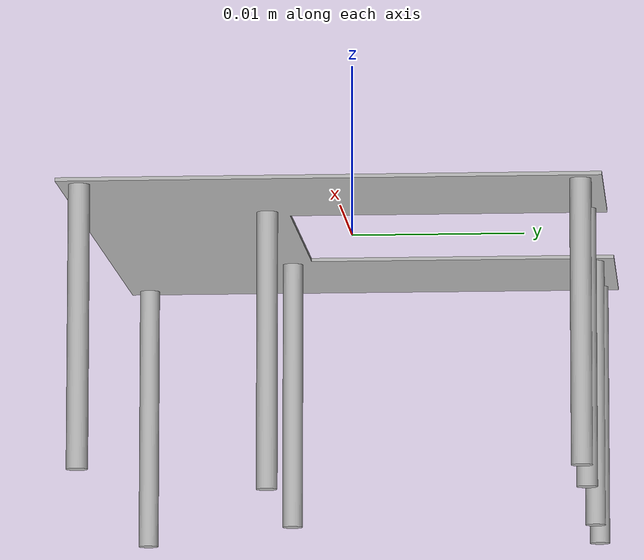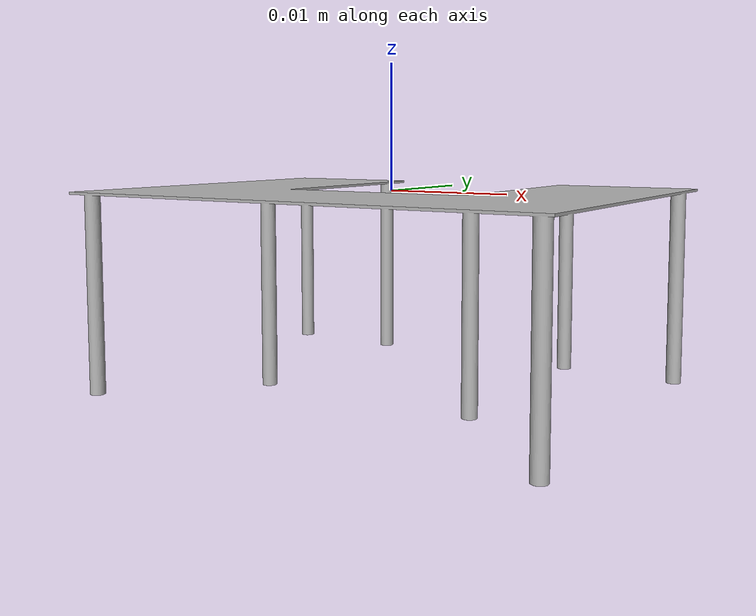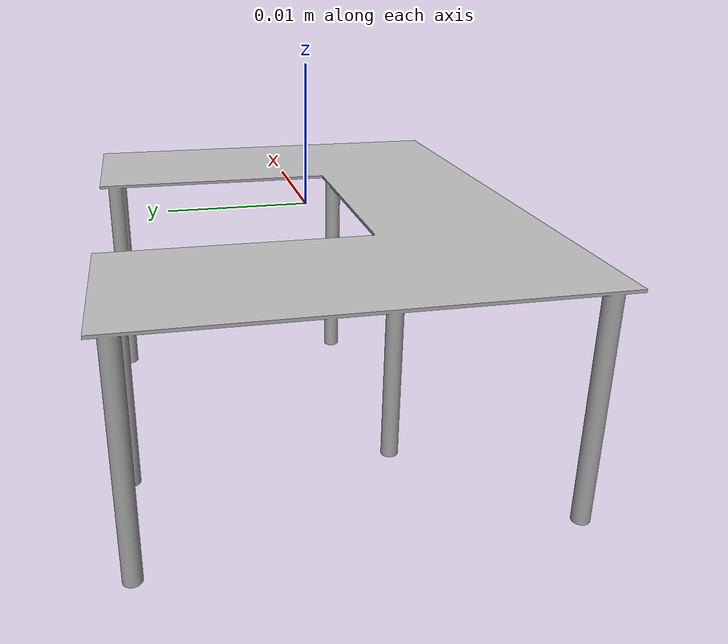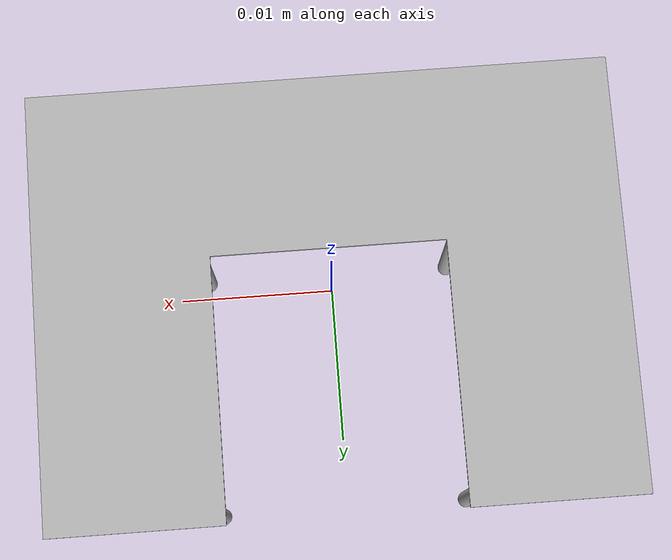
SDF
<?xml version="1.0" ?>
<sdf version='1.6'>
	<model name='table'>
	<scale>0.02 0.02 0.02</scale>
	<static>1</static>
	      <link name='link'>
	        <inertial>
	          <mass>2</mass>
	          <inertia>
	            <ixx>0.00055575</ixx>
	            <ixy>0</ixy>
	            <ixz>0</ixz>
	            <iyy>0.00055575</iyy>
	            <iyz>0</iyz>
	            <izz>0.0001755</izz>
	          </inertia>
	        </inertial>
	        <collision name='collision'>
	          <geometry>
	            <mesh>
	              <uri>model://table/meshes/table.stl</uri>
			<scale>0.02 0.02 0.02</scale>
	            </mesh>
	          </geometry>
	          <surface>
	            <friction>
	              <ode>
	                <mu>10</mu>
	                <mu2>10</mu2>
	              </ode>
	              <torsional>
	                <ode/>
	              </torsional>
	            </friction>
	            <contact>
	              <ode>
	                <kp>1e+07</kp>
	                <kd>1</kd>
	                <min_depth>0.001</min_depth>
	                <max_vel>0.5</max_vel>
	              </ode>
	            </contact>
	            <bounce/>
	          </surface>
	          <max_contacts>10</max_contacts>
	        </collision>
	        <visual name='visual'>
	          <geometry>
	           	 <mesh>
	                <uri>model://table/meshes/table.stl</uri>
			<scale>0.02 0.02 0.02</scale>
	            </mesh>
	          </geometry>
	        </visual>
	        <self_collide>0</self_collide>
	        <enable_wind>0</enable_wind>
	        <kinematic>0</kinematic>
	      </link>
	    </model>
</sdf>
